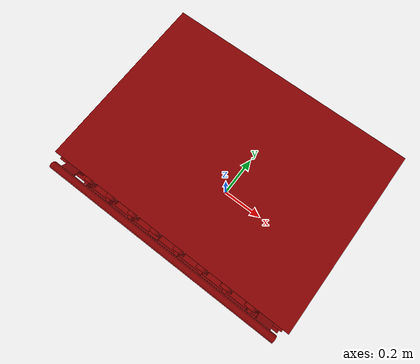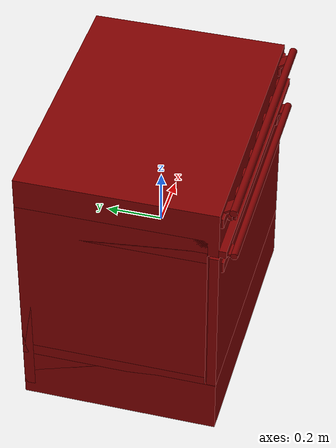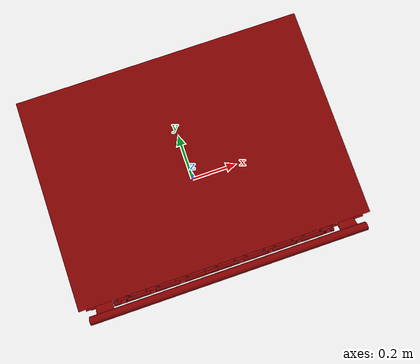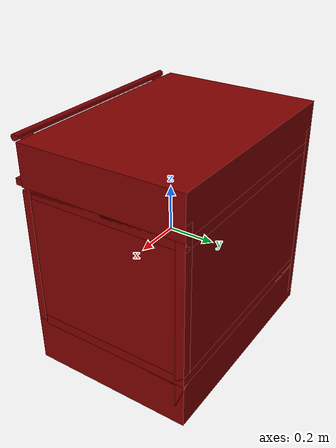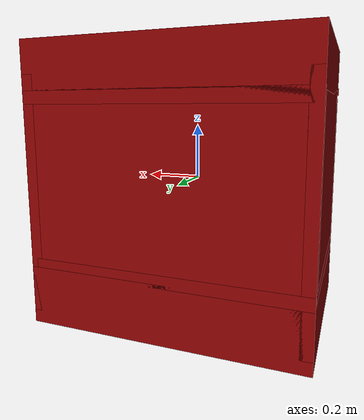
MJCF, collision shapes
<?xml version='1.0' encoding='UTF-8'?>
<mujoco model="model">
  <option timestep="0.002" gravity="0.0 0.0 -9.81"/>
  <compiler angle="radian"/>
  <asset>
    <mesh file="visuals/door.obj" name="door_vis"/>
    <mesh file="visuals/door_Clear.obj" name="door_Clear_vis"/>
    <mesh file="visuals/knob_front_center.obj" name="knob_front_center_vis"/>
    <mesh file="visuals/knob_front_left.obj" name="knob_front_left_vis"/>
    <mesh file="visuals/knob_front_right.obj" name="knob_front_right_vis"/>
    <mesh file="visuals/knob_rear_center.obj" name="knob_rear_center_vis"/>
    <mesh file="visuals/knob_rear_left.obj" name="knob_rear_left_vis"/>
    <mesh file="visuals/knob_rear_right.obj" name="knob_rear_right_vis"/>
    <mesh file="visuals/knob_temp.obj" name="knob_temp_vis"/>
    <mesh file="visuals/knob_time.obj" name="knob_time_vis"/>
    <mesh file="visuals/rack0.obj" name="rack0_vis"/>
    <mesh file="visuals/Body001.obj" name="Body001_vis"/>
    <texture file="visuals/T_BC001.png" name="Body001_material" type="2d"/>
    <material name="Body001_material" rgba="1 1 1 1.0" texture="Body001_material" shininess="0.141421377658844" specular="2"/>
    <texture file="visuals/T_BC001.png" name="door_material" type="2d"/>
    <material name="door_material" rgba="1 1 1 1.0" texture="door_material" shininess="0.141421377658844" specular="2"/>
    <texture file="visuals/T_BC001.png" name="door_Clear_material" type="2d"/>
    <material name="door_Clear_material" rgba="1 1 1 0.800000011920929" texture="door_Clear_material" shininess="0.4472135901451111" specular="0.3103448502657381"/>
    <texture file="visuals/T_BC001.png" name="knob_front_center_material" type="2d"/>
    <material name="knob_front_center_material" rgba="1 1 1 1.0" texture="knob_front_center_material" shininess="0.141421377658844" specular="0.3103448502657381"/>
    <texture file="visuals/T_BC001.png" name="knob_front_left_material" type="2d"/>
    <material name="knob_front_left_material" rgba="1 1 1 1.0" texture="knob_front_left_material" shininess="0.141421377658844" specular="0.3103448502657381"/>
    <texture file="visuals/T_BC001.png" name="knob_front_right_material" type="2d"/>
    <material name="knob_front_right_material" rgba="1 1 1 1.0" texture="knob_front_right_material" shininess="0.141421377658844" specular="0.3103448502657381"/>
    <texture file="visuals/T_BC001.png" name="knob_rear_center_material" type="2d"/>
    <material name="knob_rear_center_material" rgba="1 1 1 1.0" texture="knob_rear_center_material" shininess="0.141421377658844" specular="0.3103448502657381"/>
    <texture file="visuals/T_BC001.png" name="knob_rear_left_material" type="2d"/>
    <material name="knob_rear_left_material" rgba="1 1 1 1.0" texture="knob_rear_left_material" shininess="0.141421377658844" specular="0.3103448502657381"/>
    <texture file="visuals/T_BC001.png" name="knob_rear_right_material" type="2d"/>
    <material name="knob_rear_right_material" rgba="1 1 1 1.0" texture="knob_rear_right_material" shininess="0.141421377658844" specular="0.3103448502657381"/>
    <texture file="visuals/T_BC001.png" name="knob_temp_material" type="2d"/>
    <material name="knob_temp_material" rgba="1 1 1 1.0" texture="knob_temp_material" shininess="0.141421377658844" specular="0.3103448502657381"/>
    <texture file="visuals/T_BC001.png" name="knob_time_material" type="2d"/>
    <material name="knob_time_material" rgba="1 1 1 1.0" texture="knob_time_material" shininess="0.141421377658844" specular="0.3103448502657381"/>
    <texture file="visuals/T_BC001.png" name="rack0_material" type="2d"/>
    <material name="rack0_material" rgba="1 1 1 1.0" texture="rack0_material" shininess="0.141421377658844" specular="5"/>
  </asset>
  <default>
    <default class="visual">
      <geom conaffinity="0" contype="0" group="1" type="mesh"/>
    </default>
    <default class="collision">
      <geom group="0" rgba="0.5 0 0 0.5"/>
    </default>
    <default class="spawn">
      <geom group="0" rgba="1 1 1 0.5" contype="0" conaffinity="0"/>
      <site group="0" rgba="1 1 1 0.5"/>
    </default>
    <default class="region">
      <geom group="1" conaffinity="0" contype="0" rgba="0 1 0 0"/>
    </default>
  </default>
  <worldbody>
    <body>
      <body name="object">
        <geom mesh="Body001_vis" type="mesh" solimp="0.998 0.998 0.001" solref="0.001 1" friction="0.95 0.3 0.1" class="visual" material="Body001_material"/>
        <geom type="box" pos="8.707866072654724e-08 0.025679567828774452 0.40080246329307556" size="0.48968690633773804 0.3529754877090454 0.08887388557195663" quat="1.0 0.0 0.0 0.0" class="collision"/>
        <geom type="box" pos="-0.46910005807876587 0.04518298804759979 -0.04055200144648552" size="0.020586779341101646 0.3334721326828003 0.41562604904174805" quat="1.0 0.0 0.0 0.0" class="collision"/>
        <geom type="box" pos="4.289904609322548e-08 0.3594388961791992 -0.06659486889839172" size="0.48968690633773804 0.01921611651778221 0.39059528708457947" quat="1.0 0.0 0.0 0.0" class="collision"/>
        <geom type="box" pos="0.46921205520629883 0.04518301412463188 -0.04055200144648552" size="0.020474839955568314 0.3334721326828003 0.41562604904174805" quat="1.0 0.0 0.0 0.0" class="collision"/>
        <geom type="box" pos="2.1245796233415604e-08 0.02567540667951107 -0.3974970281124115" size="0.48968690633773804 0.3529796898365021 0.10404146462678909" quat="1.0 0.0 0.0 0.0" class="collision"/>
        <geom type="box" pos="2.1245796233415604e-08 0.04575406759977341 -0.2826630473136902" size="0.48968690633773804 0.3329010307788849 0.022169210016727448" quat="1.0 0.0 0.0 0.0" class="collision"/>
        <geom type="box" pos="-0.000989674823358655 -0.3395751714706421 0.3301699161529541" size="0.4908733069896698 0.013901172205805779 0.013471923768520355" quat="1.0 0.0 0.0 0.0" class="collision"/>
        <geom type="cylinder" pos="-0.00018086576892528683 -0.36567291617393494 0.4883706569671631" size="0.01378426793962717 0.4624275863170624" quat="0.7071068286895752 -0.0 0.7071067690849304 0.0" class="collision"/>
        <geom type="box" pos="-0.42847609519958496 -0.3314845860004425 0.44640493392944336" size="0.044898103922605515 0.004866958130151033 0.018567902967333794" quat="1.0 0.0 0.0 0.0" class="collision"/>
        <geom type="box" pos="-0.4115644097328186 -0.34185197949409485 0.4718289375305176" size="0.02798645757138729 0.004866958130151033 0.02726505510509014" quat="0.8819724321365356 0.47130098938941956 0.0 0.0" class="collision"/>
        <geom type="box" pos="0.42806917428970337 -0.3314845561981201 0.44640493392944336" size="0.044898103922605515 0.004867016337811947 0.018567917868494987" quat="1.0 0.0 0.0 0.0" class="collision"/>
        <geom type="box" pos="0.4111575484275818 -0.34185197949409485 0.4718289375305176" size="0.02798646315932274 0.004866958595812321 0.02726505883038044" quat="0.4713008999824524 -0.8819724917411804 -0.0 0.0" class="collision"/>
        <geom type="box" pos="5.034962669014931e-08 0.04575406759977341 0.29929542541503906" size="0.4896867871284485 0.3329010307788849 0.022169210016727448" quat="1.0 0.0 0.0 0.0" class="collision"/>
        <geom type="box" pos="0.4427223205566406 0.03863997012376785 -0.03591383993625641" size="0.007096467539668083 0.27380332350730896 0.006235392298549414" quat="1.0 0.0 0.0 0.0" class="collision"/>
        <geom type="box" pos="-0.44300734996795654 0.03863997012376785 -0.03591383993625641" size="0.007096467539668083 0.27380332350730896 0.006235392298549414" quat="1.0 0.0 0.0 0.0" class="collision"/>
        <body name="door">
          <joint axis="1.0 0.0 0.0" pos="-3.7044286727905273e-05 -0.3275267481803894 -0.2914506793022156" limited="true" name="door_joint" range="0.0 1.5707963267948966" type="hinge" damping="1" frictionloss="1" armature=".01" stiffness="0.05"/>
          <geom mesh="door_vis" type="mesh" solimp="0.998 0.998 0.001" solref="0.001 1" friction="0.95 0.3 0.1" class="visual" material="door_material"/>
          <geom type="box" pos="-0.41114962100982666 -0.3314845860004425 0.23677201569080353" size="0.042793016880750656 0.004866958130151033 0.02094981074333191" quat="1.0 0.0 0.0 0.0" class="collision"/>
          <geom class="collision" type="cylinder" pos="7.4588562711142e-05 -0.3642154335975647 0.26947227120399475" size="0.012923739850521088 0.4255470931529999" quat="0.7071068286895752 -0.0 0.7071067690849304 0.0" name="door_handle_main"/>
          <geom type="box" pos="-0.39634305238723755 -0.34044942259788513 0.26920992136001587" size="0.02798645570874214 0.014454095624387264 0.004969637840986252" quat="1.0 0.0 0.0 0.0" class="collision"/>
          <geom type="box" pos="-0.3964073061943054 -0.3314845860004425 0.2665667235851288" size="0.028050655499100685 0.004866958130151033 0.01154108252376318" quat="1.0 0.0 0.0 0.0" class="collision"/>
          <geom type="box" pos="0.395898699760437 -0.3314845860004425 0.2665667235851288" size="0.028050661087036133 0.00486698979511857 0.011541096493601799" quat="1.0 0.0 0.0 0.0" class="collision"/>
          <geom type="box" pos="0.410641074180603 -0.3314845860004425 0.23677201569080353" size="0.042793016880750656 0.0048670158721506596 0.020949823781847954" quat="1.0 0.0 0.0 0.0" class="collision"/>
          <geom type="box" pos="0.3958345055580139 -0.34044942259788513 0.26920992136001587" size="0.02798646129667759 0.014454095624387264 0.0049696387723088264" quat="1.0 0.0 0.0 0.0" class="collision"/>
          <geom class="collision" type="box" pos="2.1245796233415604e-08 -0.3107343018054962 0.004928462207317352" size="0.48968684673309326 0.016569973900914192 0.29634958505630493" quat="1.0 0.0 0.0 0.0" name="door_main"/>
          <geom class="collision" type="box" pos="-0.0005212976248003542 -0.3025902211666107 -0.00945317093282938" size="0.3458075523376465 0.017777936533093452 0.2141008824110031" quat="1.0 0.0 0.0 0.0"/>
          <body name="door_Clear">
            <geom mesh="door_Clear_vis" type="mesh" solimp="0.998 0.998 0.001" solref="0.001 1" friction="0.95 0.3 0.1" class="visual" material="door_Clear_material"/>
            <geom type="box" pos="-0.0005212976248003542 -0.3025902211666107 -0.00945317093282938" size="0.3458075523376465 0.017777936533093452 0.2141008824110031" quat="1.0 0.0 0.0 0.0" class="collision"/>
          </body>
        </body>
        <body name="knob_front_center">
          <joint axis="0.0 -1.0 0.0" pos="-0.15568046271800995 -0.3404916524887085 0.40053418278694153" limited="true" name="knob_front_center_joint" range="0.0 3.490658503988659" type="hinge" damping="0.05" armature="1" frictionloss="0.75"/>
          <geom mesh="knob_front_center_vis" type="mesh" solimp="0.998 0.998 0.001" solref="0.001 1" friction="0.95 0.3 0.1" class="visual" material="knob_front_center_material"/>
          <geom type="cylinder" pos="-0.1556597799062729 -0.33653295040130615 0.4007807672023773" size="0.024497689679265022 0.00717324810102582" quat="0.7071068286895752 0.7071067690849304 0.0 0.0" class="collision" friction="100 0.5 0.01"/>
          <geom type="box" pos="-0.15583287179470062 -0.3486861288547516 0.40135133266448975" size="0.007319525349885225 0.005744123365730047 0.020950069651007652" quat="1.0 0.0 0.0 0.0" class="collision" name="knob_front_center_main" friction="100 0.5 0.01"/>
        </body>
        <body name="knob_front_left">
          <joint axis="0.0 -1.0 0.0" pos="-0.36038023233413696 -0.3404916524887085 0.40053418278694153" limited="true" name="knob_front_left_joint" range="0.0 3.490658503988659" type="hinge" damping="0.05" armature="1" frictionloss="0.75"/>
          <geom mesh="knob_front_left_vis" type="mesh" solimp="0.998 0.998 0.001" solref="0.001 1" friction="0.95 0.3 0.1" class="visual" material="knob_front_left_material"/>
          <geom type="cylinder" pos="-0.3605394959449768 -0.33653295040130615 0.4007807672023773" size="0.024497689679265022 0.00717324810102582" quat="0.7071068286895752 0.7071067690849304 0.0 0.0" class="collision" friction="100 0.5 0.01"/>
          <geom type="box" pos="-0.36071258783340454 -0.3486861288547516 0.40135133266448975" size="0.007319525349885225 0.005744123365730047 0.020950069651007652" quat="1.0 0.0 0.0 0.0" class="collision" name="knob_front_left_main" friction="100 0.5 0.01"/>
        </body>
        <body name="knob_front_right">
          <joint axis="0.0 -1.0 0.0" pos="0.36166200041770935 -0.3404916524887085 0.40053418278694153" limited="true" name="knob_front_right_joint" range="0.0 3.490658503988659" type="hinge" damping="0.05" armature="1" frictionloss="0.75"/>
          <geom mesh="knob_front_right_vis" type="mesh" solimp="0.998 0.998 0.001" solref="0.001 1" friction="0.95 0.3 0.1" class="visual" material="knob_front_right_material"/>
          <geom type="cylinder" pos="0.3616826832294464 -0.33653295040130615 0.4007807672023773" size="0.024497689679265022 0.00717324810102582" quat="0.7071068286895752 0.7071067690849304 0.0 0.0" class="collision" friction="100 0.5 0.01"/>
          <geom type="box" pos="0.3615095913410187 -0.3486861288547516 0.40135133266448975" size="0.007319525349885225 0.005744123365730047 0.020950069651007652" quat="1.0 0.0 0.0 0.0" class="collision" name="knob_front_right_main" friction="100 0.5 0.01"/>
        </body>
        <body name="knob_rear_center">
          <joint axis="0.0 -1.0 0.0" pos="0.15553928911685944 -0.3404916524887085 0.40053418278694153" limited="true" name="knob_rear_center_joint" range="0.0 3.490658503988659" type="hinge" damping="0.05" armature="1" frictionloss="0.75"/>
          <geom mesh="knob_rear_center_vis" type="mesh" solimp="0.998 0.998 0.001" solref="0.001 1" friction="0.95 0.3 0.1" class="visual" material="knob_rear_center_material"/>
          <geom type="cylinder" pos="0.1553800255060196 -0.33653295040130615 0.4007807672023773" size="0.024497689679265022 0.00717324810102582" quat="0.7071068286895752 0.7071067690849304 0.0 0.0" class="collision" friction="100 0.5 0.01"/>
          <geom type="box" pos="0.15520693361759186 -0.3486861288547516 0.40135133266448975" size="0.007319525349885225 0.005744123365730047 0.020950069651007652" quat="1.0 0.0 0.0 0.0" class="collision" name="knob_rear_center_main" friction="100 0.5 0.01"/>
        </body>
        <body name="knob_rear_left">
          <joint axis="0.0 -1.0 0.0" pos="-0.257969468832016 -0.3404916524887085 0.40053418278694153" limited="true" name="knob_rear_left_joint" range="0.0 3.490658503988659" type="hinge" damping="0.05" armature="1" frictionloss="0.75"/>
          <geom mesh="knob_rear_left_vis" type="mesh" solimp="0.998 0.998 0.001" solref="0.001 1" friction="0.95 0.3 0.1" class="visual" material="knob_rear_left_material"/>
          <geom type="cylinder" pos="-0.2581980526447296 -0.33653295040130615 0.4007807672023773" size="0.024497689679265022 0.00717324810102582" quat="0.7071068286895752 0.7071067690849304 0.0 0.0" class="collision" friction="100 0.5 0.01"/>
          <geom type="box" pos="-0.2583712637424469 -0.3486861288547516 0.40135133266448975" size="0.007319525349885225 0.005744123365730047 0.020950069651007652" quat="1.0 0.0 0.0 0.0" class="collision" name="knob_rear_left_main" friction="100 0.5 0.01"/>
        </body>
        <body name="knob_rear_right">
          <joint axis="0.0 -1.0 0.0" pos="0.2586829960346222 -0.3404916524887085 0.40053418278694153" limited="true" name="knob_rear_right_joint" range="0.0 3.490658503988659" type="hinge" damping="0.05" armature="1" frictionloss="0.75"/>
          <geom mesh="knob_rear_right_vis" type="mesh" solimp="0.998 0.998 0.001" solref="0.001 1" friction="0.95 0.3 0.1" class="visual" material="knob_rear_right_material"/>
          <geom type="cylinder" pos="0.2584543526172638 -0.33653295040130615 0.4007807672023773" size="0.024497689679265022 0.00717324810102582" quat="0.7071068286895752 0.7071067690849304 0.0 0.0" class="collision" friction="100 0.5 0.01"/>
          <geom type="box" pos="0.2582811415195465 -0.3486861288547516 0.40135133266448975" size="0.007319525349885225 0.005744123365730047 0.020950069651007652" quat="1.0 0.0 0.0 0.0" class="collision" name="knob_rear_right_main" friction="100 0.5 0.01"/>
        </body>
        <body name="knob_temp">
          <joint axis="0.0 1.0 0.0" pos="-0.05304368585348129 -0.3404916524887085 0.40053418278694153" limited="true" name="knob_temp_joint" range="0.0 5.235987755982989" type="hinge" damping="0.05" armature="1" frictionloss="0.75"/>
          <geom mesh="knob_temp_vis" type="mesh" solimp="0.998 0.998 0.001" solref="0.001 1" friction="0.95 0.3 0.1" class="visual" material="knob_temp_material"/>
          <geom type="cylinder" pos="-0.05298878625035286 -0.33653295040130615 0.4007807672023773" size="0.024497689679265022 0.00717324810102582" quat="0.7071068286895752 0.7071067690849304 0.0 0.0" class="collision" friction="100 0.5 0.01"/>
          <geom class="collision" type="box" pos="-0.05241813138127327 -0.3486861288547516 0.40032362937927246" size="0.020950069651007652 0.005744123365730047 0.0073195272125303745" quat="1.0 0.0 0.0 0.0" name="knob_temp_main" friction="100 0.5 0.01"/>
        </body>
        <body name="knob_time">
          <joint axis="0.0 1.0 0.0" pos="0.05280779302120209 -0.3404916524887085 0.40053418278694153" limited="true" name="knob_time_joint" range="0.0 5.585053606381854" type="hinge" damping="0.05" armature="1" frictionloss="0.75"/>
          <geom mesh="knob_time_vis" type="mesh" solimp="0.998 0.998 0.001" solref="0.001 1" friction="0.95 0.3 0.1" class="visual" material="knob_time_material"/>
          <geom type="cylinder" pos="0.05274741351604462 -0.33653295040130615 0.4007807672023773" size="0.024497689679265022 0.00717324810102582" quat="0.7071068286895752 0.7071067690849304 0.0 0.0" class="collision" friction="100 0.5 0.01"/>
          <geom class="collision" type="box" pos="0.05257432162761688 -0.3486861288547516 0.40135133266448975" size="0.007319525349885225 0.005744123365730047 0.020950069651007652" quat="1.0 0.0 0.0 0.0" name="knob_time_main" friction="100 0.5 0.01"/>
        </body>
        <body name="rack0">
          <geom class="region" name="reg_rack0" type="box" pos="0.0006571114063262939 0.03568703681230545 0.12805917020887136" size="0.4299444088935852 0.28036746925115585 0.14440654853731394"/>
          <joint axis="0.0 -1.0 0.0" pos="2.2351741790771484e-05 0.035170555114746094 -0.027248194441199303" limited="true" name="rack0_joint" range="0.0 0.45" type="slide" damping="1" frictionloss="1" armature=".01" stiffness="0.05"/>
          <geom mesh="rack0_vis" type="mesh" solimp="0.998 0.998 0.001" solref="0.001 1" friction="0.95 0.3 0.1" class="visual" material="rack0_material"/>
          <geom type="box" pos="8.406657434534281e-05 0.03515380248427391 -0.02213241159915924" size="0.44307735562324524 0.292813777923584 0.0049240970984101295" quat="1.0 0.0 0.0 0.0" class="collision"/>
        </body>
        <geom class="region" name="reg_int" type="box" pos="0.00031882524490356445 0.03144589066505432 0.00806969404220581" size="0.44109336829185486 0.30384082889556885 0.26086650586128235"/>
        <site type="cylinder" rgba="0.5 0 0 0.5" size="0.07345137745141983 0.0001" pos="-0.29914572834968567 -0.14610238373279572 0.48762205243110657" name="burner_on_front_left"/>
        <site type="cylinder" rgba="0.5 0 0 0.5" size="0.10217312723398209 0.0001" pos="-0.29912856221199036 0.2291884422302246 0.48762205243110657" name="burner_on_rear_left"/>
        <site type="cylinder" rgba="0.5 0 0 0.5" size="0.09146720170974731 0.0001" pos="0.30170738697052 -0.14620362222194672 0.4876219928264618" name="burner_on_front_right"/>
        <site type="cylinder" rgba="0.5 0 0 0.5" size="0.08137857168912888 0.0001" pos="0.30189576745033264 0.23283635079860687 0.4876219630241394" name="burner_on_rear_right"/>
        <site type="cylinder" rgba="0.5 0 0 0.5" size="0.0817267894744873 0.0001" pos="-0.002971619600430131 -0.14885583519935608 0.4876219630241394" name="burner_on_front_center"/>
        <site type="cylinder" rgba="0.5 0 0 0.5" size="0.0913376659154892 0.0001" pos="0.013123228214681149 0.23023506999015808 0.4876219928264618" name="burner_on_rear_center"/>
        <site name="burner_front_left_place_site" type="cylinder" rgba="0.5 0 0 0" size="0.07345137745141983 4.999999509891495e-05" pos="-0.29914572834968567 -0.14610238373279572 0.48762205243110657"/>
        <site name="burner_rear_left_place_site" type="cylinder" rgba="0.5 0 0 0" size="0.10217312723398209 4.999999509891495e-05" pos="-0.29912856221199036 0.2291884422302246 0.48762205243110657"/>
        <site name="burner_front_right_place_site" type="cylinder" rgba="0.5 0 0 0" size="0.09146720170974731 4.999999509891495e-05" pos="0.30170738697052 -0.14620362222194672 0.4876219928264618"/>
        <site name="burner_rear_right_place_site" type="cylinder" rgba="0.5 0 0 0" size="0.08137857168912888 4.999999509891495e-05" pos="0.30189576745033264 0.23283635079860687 0.4876219630241394"/>
        <site name="burner_front_center_place_site" type="cylinder" rgba="0.5 0 0 0" size="0.0817267894744873 4.999999509891495e-05" pos="-0.002971619600430131 -0.14885583519935608 0.4876219630241394"/>
        <site name="burner_rear_center_place_site" type="cylinder" rgba="0.5 0 0 0" size="0.0913376659154892 5.000000601285137e-05" pos="0.013123228214681149 0.23023506999015808 0.4876219928264618"/>
        <geom class="region" name="reg_main" type="box" pos="-7.450580596923828e-09 0.025675371289253235 -0.005931079387664795" size="0.4906867871284485 0.3539796600341797 0.4966074357032776"/>
      </body>
    </body>
  </worldbody>
  <actuator>
    <motor name="door_joint_actuator" joint="door_joint" gear="50"/>
    <motor name="knob_front_center_joint_actuator" joint="knob_front_center_joint" gear="50"/>
    <motor name="knob_front_left_joint_actuator" joint="knob_front_left_joint" gear="50"/>
    <motor name="knob_front_right_joint_actuator" joint="knob_front_right_joint" gear="50"/>
    <motor name="knob_rear_center_joint_actuator" joint="knob_rear_center_joint" gear="50"/>
    <motor name="knob_rear_left_joint_actuator" joint="knob_rear_left_joint" gear="50"/>
    <motor name="knob_rear_right_joint_actuator" joint="knob_rear_right_joint" gear="50"/>
    <motor name="knob_temp_joint_actuator" joint="knob_temp_joint" gear="50"/>
    <motor name="knob_time_joint_actuator" joint="knob_time_joint" gear="50"/>
    <motor name="rack0_joint_actuator" joint="rack0_joint" gear="50"/>
  </actuator>
</mujoco>
